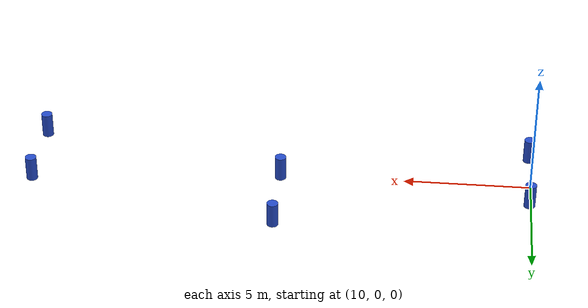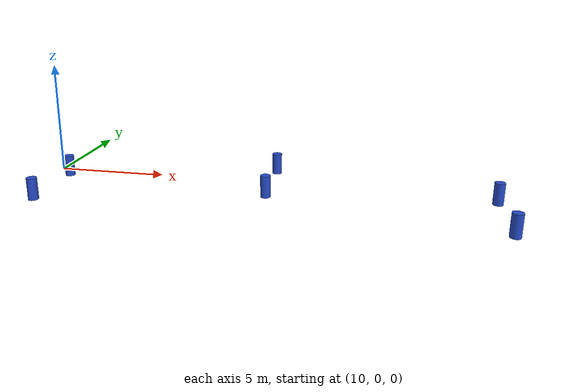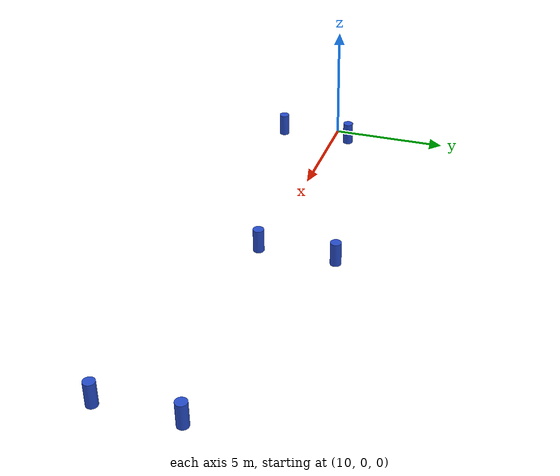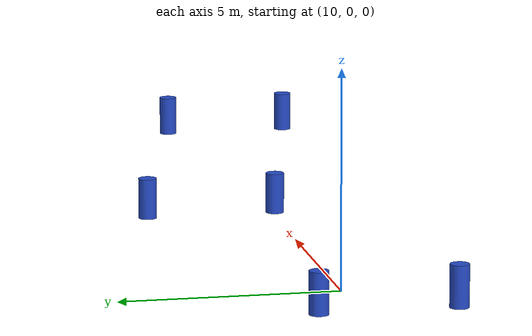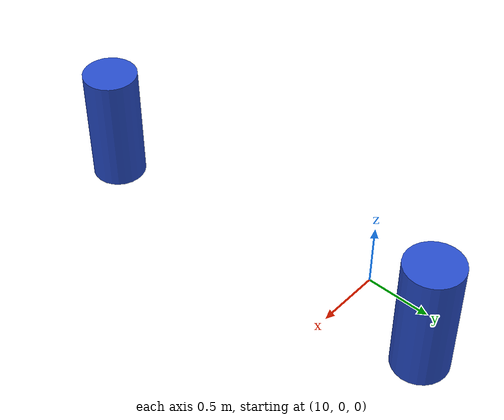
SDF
<sdf version="1.4">
 <world name="default">
  <include><uri>model://sun</uri></include>
  <model name="ground">
   <link name="body">
    <collision name="geom">
     <geometry><plane><normal>0 0 1</normal></plane></geometry>
     <surface><friction><ode><mu>100</mu><mu2>50</mu2></ode></friction></surface>
    </collision>
   </link>
   <static>true</static>
  </model>
  <include><uri>model://challenge4_gate</uri><name>gate1_left</name><pose>10 0.5 0 0 0 0</pose></include>
  <include><uri>model://challenge4_gate</uri><name>gate1_right</name><pose>10 -2.7 0 0 0 0</pose></include>
  <include><uri>model://challenge4_gate</uri><name>gate2_left</name><pose>20 -0.5 0 0 0 0</pose></include>
  <include><uri>model://challenge4_gate</uri><name>gate2_right</name><pose>20 2.7 0 0 0 0</pose></include>
  <include><uri>model://challenge4_gate</uri><name>gate3_left</name><pose>30 0.5 0 0 0 0</pose></include>
  <include><uri>model://challenge4_gate</uri><name>gate3_right</name><pose>30 -2.7 0 0 0 0</pose></include>
  <model name="road_markers">
   <link name="base">
    <visual name="markers">
     <plugin name="road_marker_plugin" filename="libRoadMarkerPlugin.so">
      <bonusSquares>
       <square>8.1 -2.25 0</square>
       <square>15.5 1.85 0</square>
       <square>25.7 0.95 0</square>
      </bonusSquares>
     </plugin>
     <material>
      <script>
       <uri>model://road_markers/materials/scripts</uri>
       <uri>model://road_markers/materials/textures</uri>
       <name>RoadMarkers/BonusSquares</name>
      </script>
     </material>
    </visual>
   </link>
   <static>true</static>
  </model>
  <plugin name="TrackPlugin" filename="libTrackPlugin.so">
   <loop>false</loop>
   <numGaps>2</numGaps>
   <widthGaps>1</widthGaps>
   <stdGaps>0.2</stdGaps>
  </plugin>
 </world>
</sdf>

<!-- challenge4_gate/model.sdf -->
<sdf version='1.6'>
  <model name='challenge4_gate'>
    <link name='link'>
      <pose frame=''>0 0 0 0 0 0</pose>
      <inertial>
        <mass>1</mass>
        <inertia>
          <ixx>0.166667</ixx>
          <ixy>0</ixy>
          <ixz>0</ixz>
          <iyy>0.166667</iyy>
          <iyz>0</iyz>
          <izz>0.166667</izz>
        </inertia>
        <pose frame=''>0 0 0 0 -0 0</pose>
      </inertial>
      <self_collide>0</self_collide>
      <kinematic>0</kinematic>
      <gravity>1</gravity>
      <visual name='visual'>
        <geometry>
          <cylinder>
            <radius>0.225</radius>
            <length>1.0</length>
          </cylinder>
        </geometry>
        <material>
          <lighting>1</lighting>
          <script>
            <uri>file://media/materials/scripts/gazebo.material</uri>
            <name>Gazebo/Blue</name>
          </script>
          <shader type='pixel'>
            <normal_map>__default__</normal_map>
          </shader>
          <ambient>0 0 1 1</ambient>
          <diffuse>0 0 1 1</diffuse>
          <specular>0 0 1 1</specular>
          <emissive>0 0 0 1</emissive>
        </material>
        <pose frame=''>0 0 0 0 -0 0</pose>
        <transparency>0</transparency>
        <cast_shadows>1</cast_shadows>
      </visual>
      <collision name='collision'>
        <laser_retro>0</laser_retro>
        <max_contacts>10</max_contacts>
        <pose frame=''>0 0 0 0 -0 0</pose>
        <geometry>
          <cylinder>
            <radius>0.225</radius>
            <length>1.0</length>
          </cylinder>
        </geometry>
      </collision>
    </link>
  </model>
</sdf>
